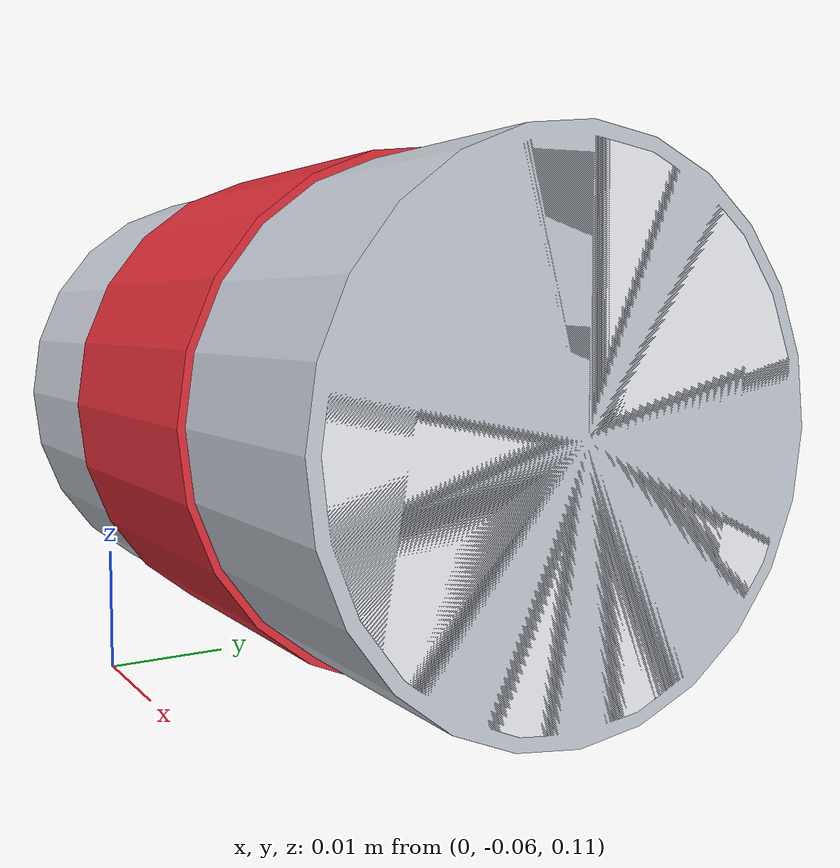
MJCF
<mujoco>
  <default>
    <default class="can_shell">
      <geom
          friction="1.55 0.030 0.006"
          conaffinity="7"
          condim="4"
          solref="0.030 1.0"
          solimp="0.82 0.90 0.003"
      />
    </default>
  </default>

  <asset>
    <material name="can_shell" rgba="0.78 0.80 0.84 0.96" specular="0.45" shininess="0.30"/>
    <material name="can_label" rgba="0.88 0.18 0.22 1.0" specular="0.15" shininess="0.10"/>
    <material name="can_lid" rgba="0.93 0.94 0.96 1.0" specular="0.35" shininess="0.22"/>
  </asset>

  <worldbody>
    <!-- 横放圆柱：总长 0.06 m，直径 0.04 m。 -->
    <body name="cube" pos="0.008041 -0.040830 0.132128" quat="0.707715 -0.007412 0.706458 0.000577" childclass="can_shell">
      <freejoint name="cube_freejoint"/>

      <!-- 主碰撞体：
           MJX 当前不支持 cylinder-vs-box 接触，因此真实物理仍用同包络尺寸的
           capsule 近似；圆柱外观由下面的 visual geom 提供。 -->
      <geom
          name="cube"
          type="capsule"
          fromto="0 0 -0.010 0 0 0.010"
          size="0.020"
          mass="0.030"
          group="3"
          material="can_shell"
      />

      <geom
          name="can_body_visual"
          type="cylinder"
          size="0.020 0.030"
          pos="0 0 0"
          mass="0"
          density="0"
          group="1"
          material="can_shell"
          contype="0"
          conaffinity="0"
      />

      <!-- 标签带：只做视觉辅助，不参与碰撞。 -->
      <geom
          name="can_label_band"
          type="cylinder"
          size="0.0206 0.012"
          pos="0 0 0"
          mass="0"
          density="0"
          group="1"
          material="can_label"
          contype="0"
          conaffinity="0"
      />

      <!-- 保留简化顶盖/底盖，便于视觉识别。 -->
      <geom
          name="can_top_lid"
          type="cylinder"
          size="0.019 0.0015"
          pos="0 0 0.0285"
          mass="0"
          density="0"
          group="1"
          material="can_lid"
          contype="0"
          conaffinity="0"
      />
      <geom
          name="can_bottom_lid"
          type="cylinder"
          size="0.019 0.0015"
          pos="0 0 -0.0285"
          mass="0"
          density="0"
          group="1"
          material="can_lid"
          contype="0"
          conaffinity="0"
      />

      <site name="cube_center" pos="0 0 0" size="0.006" rgba="0 0.8 0 0.7" group="4"/>
      <site name="can_center" pos="0 0 0" size="0.006" rgba="0 0.8 0 0.7" group="4"/>
      <site
          name="can_grasp_band"
          pos="0 0 0"
          size="0.024 0.024 0.022"
          type="ellipsoid"
          rgba="1 0 0 0.10"
          group="4"
      />
    </body>
  </worldbody>
</mujoco>
